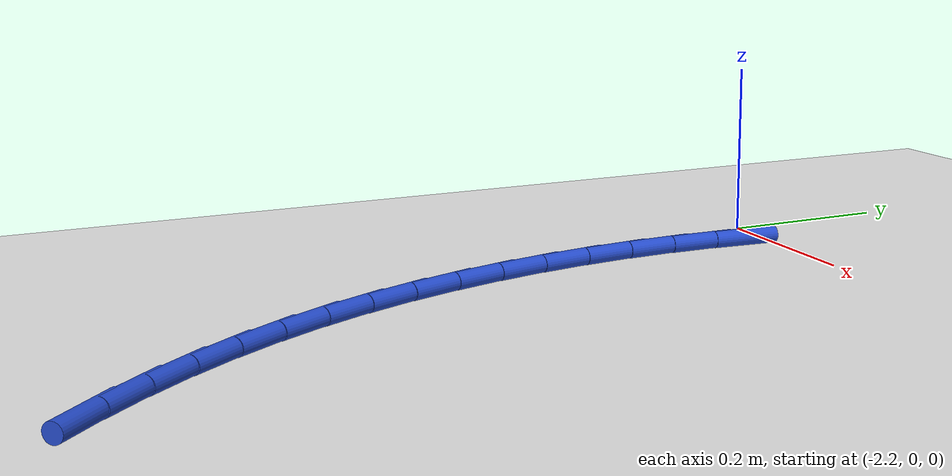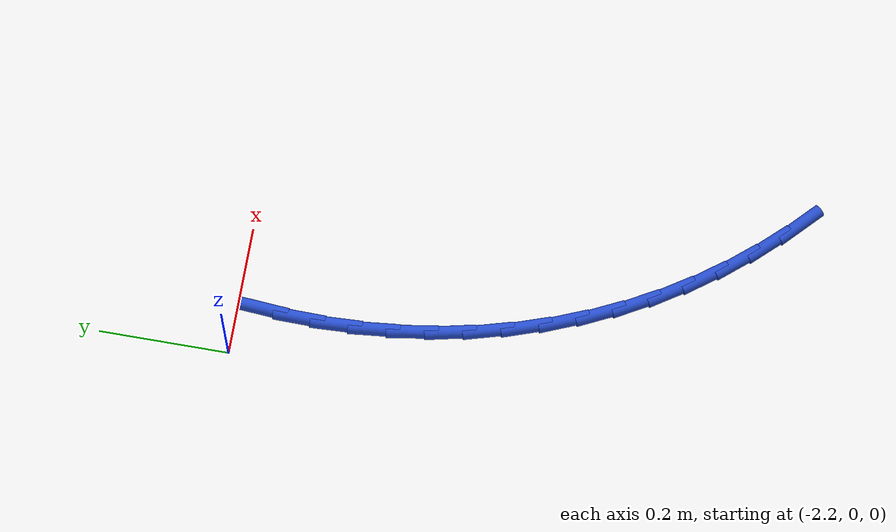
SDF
<sdf version="1.6">
 <world name="default">
  <model name="ground_plane">
   <static>1</static>
   <link name="link">
    <collision name="collision">
     <geometry><plane><normal>0 0 1</normal><size>100 100</size></plane></geometry>
     <surface><friction><ode><mu>100</mu><mu2>50</mu2></ode></friction></surface>
    </collision>
    <visual name="visual">
     <cast_shadows>0</cast_shadows>
     <geometry><plane><normal>0 0 1</normal><size>100 100</size></plane></geometry>
     <material>
      <script><uri>file://media/materials/scripts/gazebo.material</uri><name>Gazebo/WhiteGlow</name></script>
     </material>
    </visual>
   </link>
  </model>
  <model name="line">
   <link name="link_60">
    <pose>-2.1247150983184127 -0.03858615702346558 0.01 0 1.57 1.49071483338838</pose>
    <collision name="collision">
     <geometry><cylinder><radius>0.01</radius><length>0.08</length></cylinder></geometry>
    </collision>
    <visual name="visual">
     <material>
      <script><name>Gazebo/Blue</name><uri>file://media/materials/scripts/gazebo.material</uri></script>
     </material>
     <geometry><cylinder><radius>0.01</radius><length>0.08</length></cylinder></geometry>
    </visual>
   </link>
   <link name="link_61">
    <pose>-2.1293014934007175 -0.09573527400179477 0.01 0 1.57 1.551438066312363</pose>
    <collision name="collision">
     <geometry><cylinder><radius>0.01</radius><length>0.08</length></cylinder></geometry>
    </collision>
    <visual name="visual">
     <material>
      <script><name>Gazebo/Blue</name><uri>file://media/materials/scripts/gazebo.material</uri></script>
     </material>
     <geometry><cylinder><radius>0.01</radius><length>0.08</length></cylinder></geometry>
    </visual>
   </link>
   <link name="link_62">
    <pose>-2.13041639623267 -0.15332121063149107 0.01 0 1.57 -1.5309194054881563</pose>
    <collision name="collision">
     <geometry><cylinder><radius>0.01</radius><length>0.08</length></cylinder></geometry>
    </collision>
    <visual name="visual">
     <material>
      <script><name>Gazebo/Blue</name><uri>file://media/materials/scripts/gazebo.material</uri></script>
     </material>
     <geometry><cylinder><radius>0.01</radius><length>0.08</length></cylinder></geometry>
    </visual>
   </link>
   <link name="link_63">
    <pose>-2.1281122962299004 -0.21107086870759958 0.01 0 1.57 -1.4727325341965065</pose>
    <collision name="collision">
     <geometry><cylinder><radius>0.01</radius><length>0.08</length></cylinder></geometry>
    </collision>
    <visual name="visual">
     <material>
      <script><name>Gazebo/Blue</name><uri>file://media/materials/scripts/gazebo.material</uri></script>
     </material>
     <geometry><cylinder><radius>0.01</radius><length>0.08</length></cylinder></geometry>
    </visual>
   </link>
   <link name="link_64">
    <pose>-2.1224416828080424 -0.26871115002516355 0.01 0 1.57 -1.4151500093259892</pose>
    <collision name="collision">
     <geometry><cylinder><radius>0.01</radius><length>0.08</length></cylinder></geometry>
    </collision>
    <visual name="visual">
     <material>
      <script><name>Gazebo/Blue</name><uri>file://media/materials/scripts/gazebo.material</uri></script>
     </material>
     <geometry><cylinder><radius>0.01</radius><length>0.08</length></cylinder></geometry>
    </visual>
   </link>
   <link name="link_65">
    <pose>-2.113457045382727 -0.32596895637922785 0.01 0 1.57 -1.3577254655338724</pose>
    <collision name="collision">
     <geometry><cylinder><radius>0.01</radius><length>0.08</length></cylinder></geometry>
    </collision>
    <visual name="visual">
     <material>
      <script><name>Gazebo/Blue</name><uri>file://media/materials/scripts/gazebo.material</uri></script>
     </material>
     <geometry><cylinder><radius>0.01</radius><length>0.08</length></cylinder></geometry>
    </visual>
   </link>
   <link name="link_66">
    <pose>-2.101210873369587 -0.38257118956483793 0.01 0 1.57 -1.3000105841936518</pose>
    <collision name="collision">
     <geometry><cylinder><radius>0.01</radius><length>0.08</length></cylinder></geometry>
    </collision>
    <visual name="visual">
     <material>
      <script><name>Gazebo/Blue</name><uri>file://media/materials/scripts/gazebo.material</uri></script>
     </material>
     <geometry><cylinder><radius>0.01</radius><length>0.08</length></cylinder></geometry>
    </visual>
   </link>
   <link name="link_67">
    <pose>-2.085755656184254 -0.4382447513770368 0.01 0 1.57 -1.2415551255797537</pose>
    <collision name="collision">
     <geometry><cylinder><radius>0.01</radius><length>0.08</length></cylinder></geometry>
    </collision>
    <visual name="visual">
     <material>
      <script><name>Gazebo/Blue</name><uri>file://media/materials/scripts/gazebo.material</uri></script>
     </material>
     <geometry><cylinder><radius>0.01</radius><length>0.08</length></cylinder></geometry>
    </visual>
   </link>
   <link name="link_68">
    <pose>-2.06714388324236 -0.4927165436108695 0.01 0 1.57 -1.1819074908038487</pose>
    <collision name="collision">
     <geometry><cylinder><radius>0.01</radius><length>0.08</length></cylinder></geometry>
    </collision>
    <visual name="visual">
     <material>
      <script><name>Gazebo/Blue</name><uri>file://media/materials/scripts/gazebo.material</uri></script>
     </material>
     <geometry><cylinder><radius>0.01</radius><length>0.08</length></cylinder></geometry>
    </visual>
   </link>
   <link name="link_69">
    <pose>-2.045428043959538 -0.5457134680613805 0.01 0 1.57 -1.1206168191294654</pose>
    <collision name="collision">
     <geometry><cylinder><radius>0.01</radius><length>0.08</length></cylinder></geometry>
    </collision>
    <visual name="visual">
     <material>
      <script><name>Gazebo/Blue</name><uri>file://media/materials/scripts/gazebo.material</uri></script>
     </material>
     <geometry><cylinder><radius>0.01</radius><length>0.08</length></cylinder></geometry>
    </visual>
   </link>
   <link name="link_70">
    <pose>-2.020660627751419 -0.5969624265236152 0.01 0 1.57 -1.0574855073008016</pose>
    <collision name="collision">
     <geometry><cylinder><radius>0.01</radius><length>0.08</length></cylinder></geometry>
    </collision>
    <visual name="visual">
     <material>
      <script><name>Gazebo/Blue</name><uri>file://media/materials/scripts/gazebo.material</uri></script>
     </material>
     <geometry><cylinder><radius>0.01</radius><length>0.08</length></cylinder></geometry>
    </visual>
   </link>
   <link name="link_71">
    <pose>-1.9928981569423987 -0.6462116820508591 0.01 0 1.57 -0.994618809909502</pose>
    <collision name="collision">
     <geometry><cylinder><radius>0.01</radius><length>0.08</length></cylinder></geometry>
    </collision>
    <visual name="visual">
     <material>
      <script><name>Gazebo/Blue</name><uri>file://media/materials/scripts/gazebo.material</uri></script>
     </material>
     <geometry><cylinder><radius>0.01</radius><length>0.08</length></cylinder></geometry>
    </visual>
   </link>
   <link name="link_72">
    <pose>-1.9622344481692322 -0.6934070358715411 0.01 0 1.57 -0.9336213944652467</pose>
    <collision name="collision">
     <geometry><cylinder><radius>0.01</radius><length>0.08</length></cylinder></geometry>
    </collision>
    <visual name="visual">
     <material>
      <script><name>Gazebo/Blue</name><uri>file://media/materials/scripts/gazebo.material</uri></script>
     </material>
     <geometry><cylinder><radius>0.01</radius><length>0.08</length></cylinder></geometry>
    </visual>
   </link>
   <link name="link_73">
    <pose>-1.9287834916930495 -0.738601143602668 0.01 0 1.57 -0.874896346018711</pose>
    <collision name="collision">
     <geometry><cylinder><radius>0.01</radius><length>0.08</length></cylinder></geometry>
    </collision>
    <visual name="visual">
     <material>
      <script><name>Gazebo/Blue</name><uri>file://media/materials/scripts/gazebo.material</uri></script>
     </material>
     <geometry><cylinder><radius>0.01</radius><length>0.08</length></cylinder></geometry>
    </visual>
   </link>
   <link name="link_74">
    <pose>-1.8926594757638884 -0.7818477095564699 0.01 0 1.57 -0.818743964420648</pose>
    <collision name="collision">
     <geometry><cylinder><radius>0.01</radius><length>0.08</length></cylinder></geometry>
    </collision>
    <visual name="visual">
     <material>
      <script><name>Gazebo/Blue</name><uri>file://media/materials/scripts/gazebo.material</uri></script>
     </material>
     <geometry><cylinder><radius>0.01</radius><length>0.08</length></cylinder></geometry>
    </visual>
   </link>
   <link name="link_75">
    <pose>-1.8539765886317854 -0.8232004380451737 0.01 0 1.57 -0.7653739126720119</pose>
    <collision name="collision">
     <geometry><cylinder><radius>0.01</radius><length>0.08</length></cylinder></geometry>
    </collision>
    <visual name="visual">
     <material>
      <script><name>Gazebo/Blue</name><uri>file://media/materials/scripts/gazebo.material</uri></script>
     </material>
     <geometry><cylinder><radius>0.01</radius><length>0.08</length></cylinder></geometry>
    </visual>
   </link>
  </model>
 </world>
</sdf>
